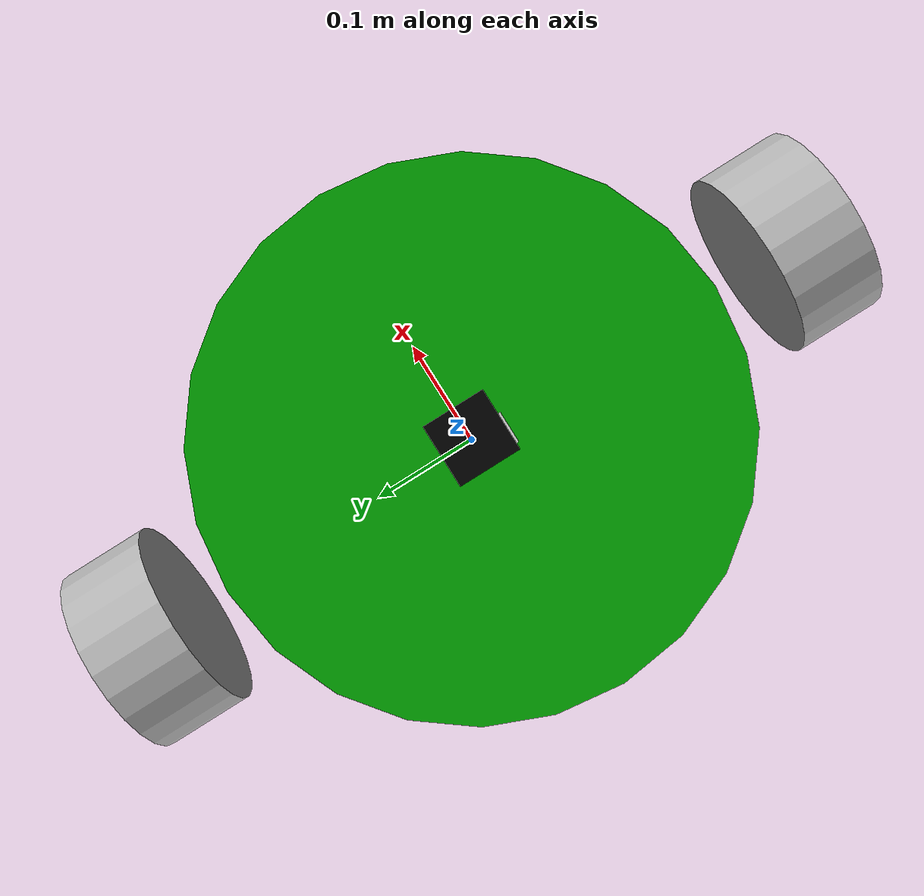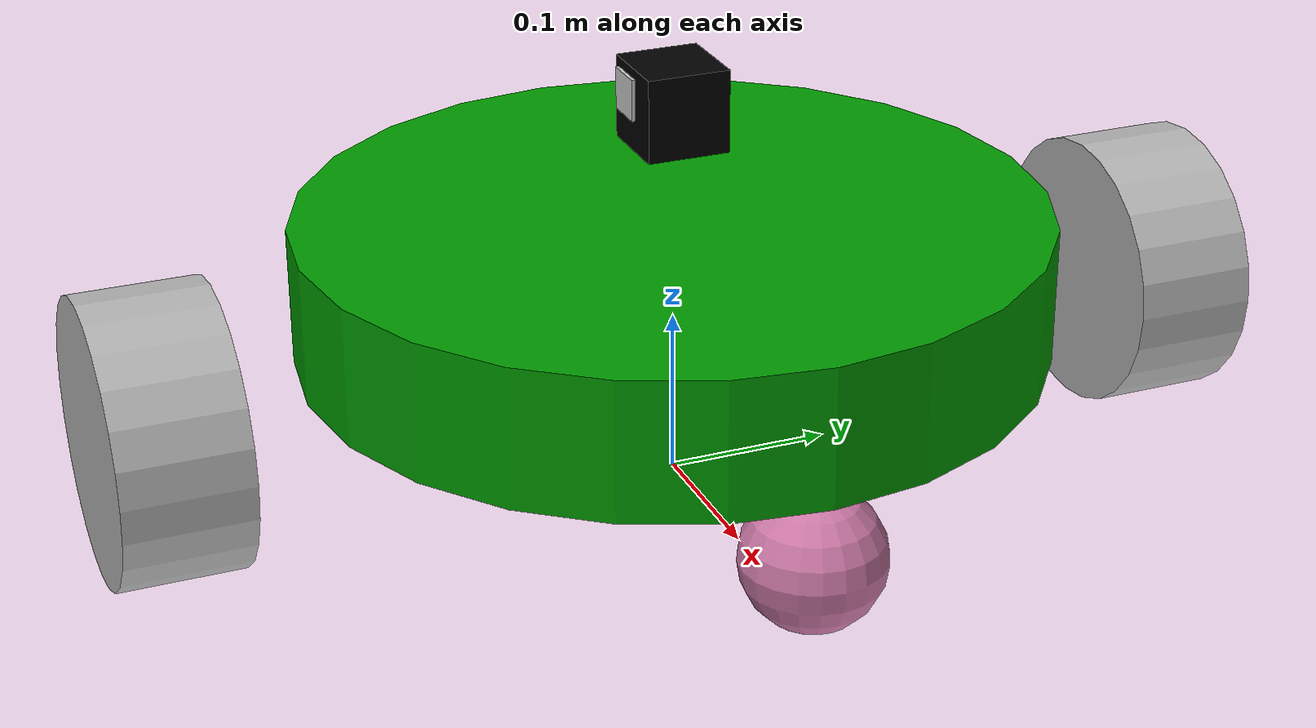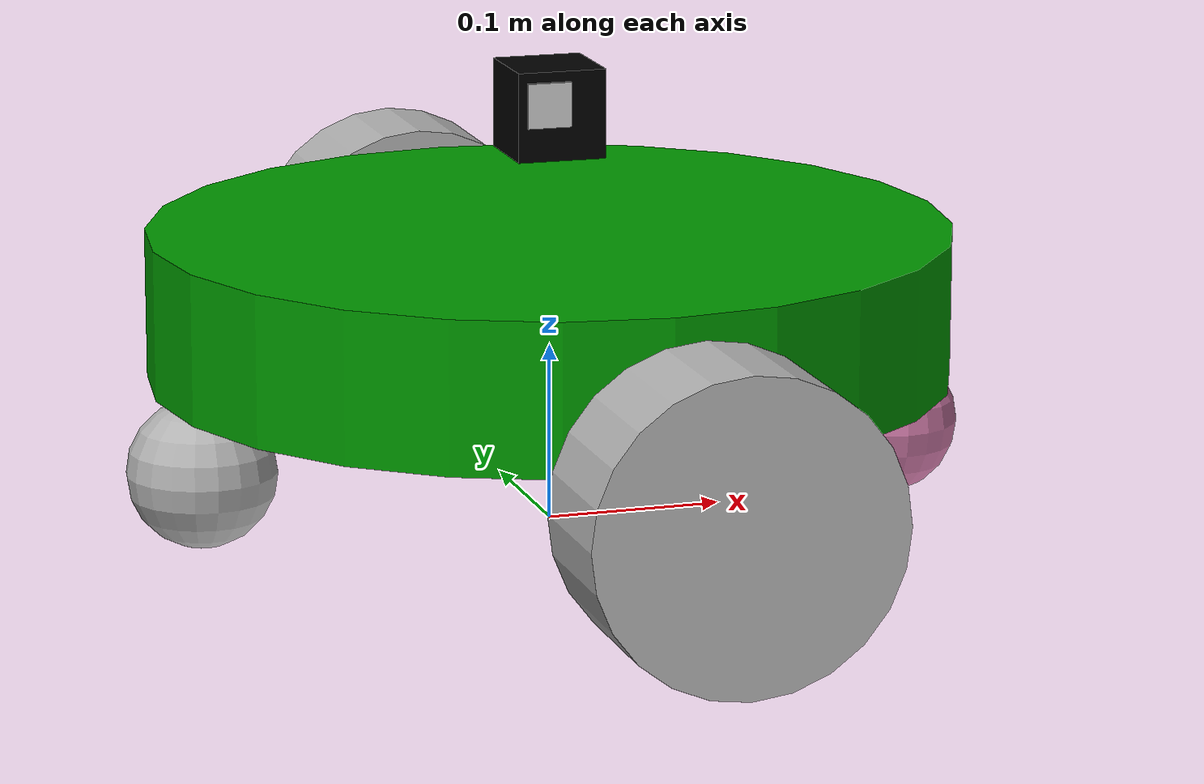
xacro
<?xml version="1.0"?>
<robot name="robot" xmlns:xacro="http://www.ros.org/wiki/xacro">

    <xacro:include filename="$(find robot_description)/urdf/common_properties.xacro" />
    <xacro:include filename="$(find robot_description)/urdf/mobile_base_gazebo.xacro" />
    <xacro:include filename="$(find robot_description)/urdf/mobile_base.xacro" />

</robot>

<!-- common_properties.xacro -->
<robot name="robot" xmlns:xacro="http://www.ros.org/wiki/xacro">

    <material name="green">
        <color rgba="0 0.6 0 1" />
    </material>

  <material name="silver">
    <color rgba="0.8 0.8 0.8 1.0"/>
  </material>
    <material name="gray">
        <color rgba="0.7 0.7 0.7 1" />
    </material>

    <material name = "black">
        <color rgba="0 0 0 1"/>
    </material>

    <xacro:macro name="box_inertia" params="m x y z o_xyz o_rpy">
        <inertial>
            <mass value="${m}" />
            <origin xyz="${o_xyz}" rpy="${o_rpy}" />
            <inertia ixx="${(m/12) * (z*z + y*y)}" ixy="0" ixz="0"
                    iyy="${(m/12) * (x*x + z*z)}" iyz="0"
                    izz="${(m/12) * (x*x + y*y)}" />
        </inertial>
    </xacro:macro>

    <xacro:macro name="cylinder_inertia" params="m r l o_xyz o_rpy">
        <inertial>
            <origin xyz="${o_xyz}" rpy="${o_rpy}" />
  <mass value="0.5"/>
            <inertia ixx="${(m/12) * (3*r*r + l*l)}" ixy="0" ixz="0"
                    iyy="${(m/12) * (3*r*r + l*l)}" iyz="0"
                    izz="${(m/2) * (r*r)}" />        </inertial>
    </xacro:macro>

    <xacro:macro name="sphere_inertia" params="m r o_xyz o_rpy">
        <inertial>
            <mass value="${m}" />
            <origin xyz="${o_xyz}" rpy="${o_rpy}" />
            <inertia ixx="${(2/5) * m * r * r}" ixy="0" ixz="0"
                    iyy="${(2/5) * m * r * r}" iyz="0"
                    izz="${(2/5) * m * r * r}" />
        </inertial>
    </xacro:macro>

    <xacro:macro name="camera" params="width height hfov color">

    <visual>
        <geometry>
            <box size="0.015 0.040 0.030" />
        </geometry>
        <material name="${color}" />
        <origin xyz="0 0 0" rpy="0 0 0" />
    </visual>
    <visual>
        <geometry>
            <cylinder radius="0.010" length="0.015"/>
        </geometry>
        <material name="green" />
        <origin xyz="0.0075 0 0" rpy="0 ${pi / 2.0} 0" />
    </visual>
    <mass value = "0.1" />
        <inertia ixx="0.000166667" iyy = "0.000166667" izz="0.000166667" />
    </xacro:macro>

   <xacro:macro name="wheel_link" params="prefix">
        <link name="${prefix}_wheel_link">
            <visual>
                <geometry>
                    <cylinder radius="${wheel_radius}" length="${wheel_length}" />
                </geometry>
                <origin xyz="0 0 0" rpy="${pi / 2.0} 0 0" />
                <material name="gray" />
            </visual>
            <collision>
                <geometry>
                    <sphere radius="${wheel_radius}"/>
                </geometry>
                <origin xyz="0 0 0" rpy="${pi / 2.0} 0 0" />
            </collision>
            <fdir1 value="1 0 0"/>
            <xacro:sphere_inertia m="0.01" r="${wheel_radius}"
                                    o_xyz="0 0 0" o_rpy="${pi / 2.0} 0 0" />
        </link>

    </xacro:macro>

    <xacro:macro name = "wheel_joint" params = "child_prefix xyz xyz_axis rpy">
        <joint name="base_${child_prefix}_wheel_joint" type="continuous">
            <parent link="base_link" />
            <child link="${child_prefix}_wheel_link" />
            <origin xyz="${xyz}" rpy="${rpy}" />
            <axis xyz="${xyz_axis}" />

        </joint>

    </xacro:macro>

<xacro:macro name="robo_link" params="name radius length material mass">

  <link name="${name}">
      <visual>
        <geometry>
          <cylinder length="${length}" radius="${radius}"/>
        </geometry>
          <origin xyz="0.0 0.0 ${length/2}" rpy="0.0 0.0 0.0"/>
        <material name="${material}"/>
      </visual>
      <collision>
          <geometry>
              <cylinder length="${length}" radius="${radius}"/>
          </geometry>
          <origin xyz="0.0 0.0 ${length/2}" rpy="0.0 0.0 0.0"/>
      </collision>
      <inertial>
          <mass value="${mass}" />
          <origin xyz="0 0 0" rpy="0 0 0" />
          <inertia ixx="${(mass/12) * (3*radius*radius + length*length)}" ixy="0" ixz="0"
                  iyy="${(mass/12) * (3*radius*radius + length*length)}" iyz="0"
                  izz="${(mass/2) * (radius*radius)}" />
      </inertial>
    </link>
</xacro:macro>

<xacro:macro name = "box_link" params = "name sx sy sz material mass">

  <link name="${name}">
    <visual>
      <geometry>
        <mesh filename="file://$(find antr_description)/stl/excavator.stl" scale="0.001 0.001 0.001"/>
      </geometry>
      <origin xyz="0.0 0.0 0.0" rpy="0.0 0.0 0.0"/>
      <material name="${material}"/>
    </visual>
    <collision>
      <geometry>
        <box size="${sx} ${sy} ${sz}"/>
      </geometry>
      <origin xyz="0.0 0.0 0.0" rpy="0.0 0.0 0.0"/>
    </collision>

  <inertial>
  <mass value="${mass}"/>
  <origin xyz="0 0 0" rpy="0 0 0" />
  <inertia ixx="${mass*(sy*sy + sz* sz)/12}" ixy="0.0" ixz="0.0" iyy="${mass*(sx*sx + sz* sz)/12}" iyz="0.0" izz="${mass*(sy*sy + sx* sx)/12}"/>
  </inertial>

  </link>

</xacro:macro>

<xacro:macro name="ros2_control_joint" params = "name mi ma">
  <joint name="${name}">

        <command_interface name = "position">
            <param name="min" value="${mi}"/>
            <param name="max" value="${ma}"/>
        </command_interface>

        <state_interface name = "velocity" />
        <state_interface name = "position"/>
    </joint>
</xacro:macro>

</robot>

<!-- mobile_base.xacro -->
<robot xmlns:xacro="http://www.ros.org/wiki/xacro">

    <xacro:property name="base_length" value="0.6" />
    <xacro:property name="base_width" value="0.45" />
    <xacro:property name="base_height" value="0.084" />
    <xacro:property name="wheel_radius" value="0.084" />
    <xacro:property name="wheel_length" value="0.075" />

    <link name="base_footprint" />

    <link name="base_link">
        <visual>
            <geometry>
                <cylinder radius="${base_width/2.0}" length="${base_height}" />
            </geometry>
            <origin xyz="0 0 ${base_height / 2.0}" rpy="0 0 0" />
            <material name="green" />
        </visual>
        <collision>
            <geometry>
                <cylinder radius="${base_width/2.0}" length="${base_height}" />
            </geometry>
            <origin xyz="0 0 ${base_height / 2.0}" rpy="0 0 0" />
        </collision>
        <xacro:cylinder_inertia m="0.01" r="${base_width/2.0}" l="${base_height}"
                                o_xyz="0 0 0" o_rpy="${pi / 2.0} 0 0" />
    </link>

    <link name = "lidar_link">
            <visual>
            <geometry>
                <box size="0.05 0.05 0.05 " />
            </geometry>
            <origin xyz="0 0 ${base_height / 2.0}" rpy="0 0 0" />
            <material name="black" />
        </visual>
    </link>

    <link name = "imu_link">
        <visual>
        <geometry>
            <box size="0.025 0.025 0.025 " />
        </geometry>
        <origin xyz="0 0 ${base_height / 2.0}" rpy="0 0 0" />
        <material name="silver" />
        </visual>
    </link>

    <xacro:wheel_link prefix="right_back" />
    <xacro:wheel_link prefix="left_back" />
    <link name="caster_wheel">
        <visual>
            <geometry>
                <sphere radius="${wheel_radius/2.0}"/>
            </geometry>
        </visual>
        <collision>
            <geometry>
                <sphere radius="${wheel_radius/2.0}"/>
            </geometry>
        </collision>
        <xacro:sphere_inertia m="0.1" r="${wheel_radius}" o_xyz="0 0 0" o_rpy="0 0 0" />
    </link>
    <link name="caster_wheel_2">
        <visual>
            <geometry>
                <sphere radius="${wheel_radius/2.0}"/>
            </geometry>
        </visual>
        <collision>
            <geometry>
                <sphere radius="${wheel_radius/2.0}"/>
            </geometry>
        </collision>
        <xacro:sphere_inertia m="0.1" r="${wheel_radius}" o_xyz="0 0 0" o_rpy="0 0 0" />
    </link>

    <joint name="base_joint" type="fixed">
        <parent link="base_footprint" />
        <child link="base_link" />
        <origin xyz="0 0 ${wheel_radius}" rpy="0 0 0" />
    </joint>

    <xacro:wheel_joint child_prefix = "left_back" xyz = "0 ${(base_width + wheel_length) / 2.0  + 0.05} 0.0" xyz_axis = "0 1 0" rpy = "0 0 0"/>
    <xacro:wheel_joint child_prefix = "right_back" xyz = "0 ${-(base_width + wheel_length) / 2.0 - 0.05} 0.0" xyz_axis = "0 1 0" rpy = "0 0 0"/>

    <joint name="caster_wheel_joint" type="fixed">
        <parent link="base_link"/>
        <child link="caster_wheel"/>
        <origin xyz="${base_length/2 - 0.10} 0 ${-wheel_radius/2.0}"/>
    </joint>

    <joint name="caster_wheel_joint_2" type="fixed">
        <parent link="base_link"/>
        <child link="caster_wheel_2"/>
        <origin xyz="${-base_length/2 + 0.10} 0 ${-wheel_radius/2.0}"/>
    </joint>

    <joint name="lidar_base_link_joint" type="fixed">
        <parent link="base_link"/>
        <child link="lidar_link"/>
        <origin xyz="0 0 ${base_height+0.025}"/>
    </joint>

    <joint name="imu_lidar_joint" type="fixed">
        <parent link="lidar_link"/>
        <child link="imu_link"/>
        <origin xyz="-0.007698 -0.014655 0.00667"/>
    </joint>

</robot>
